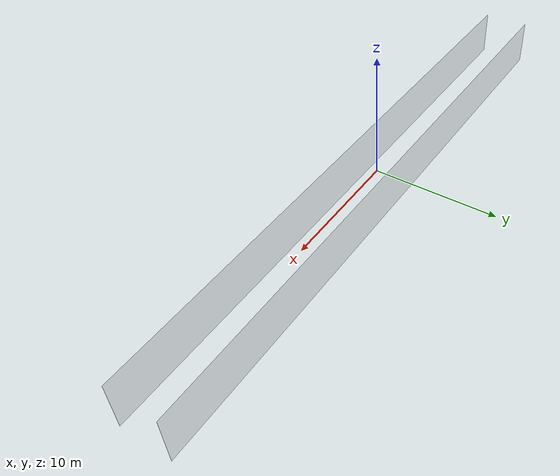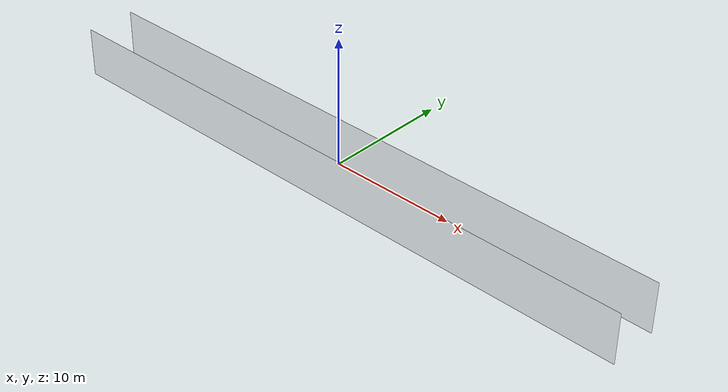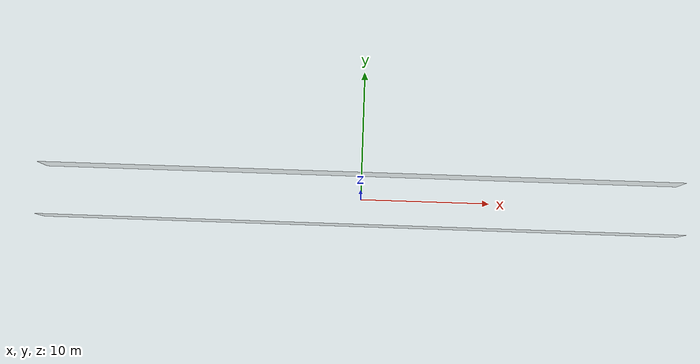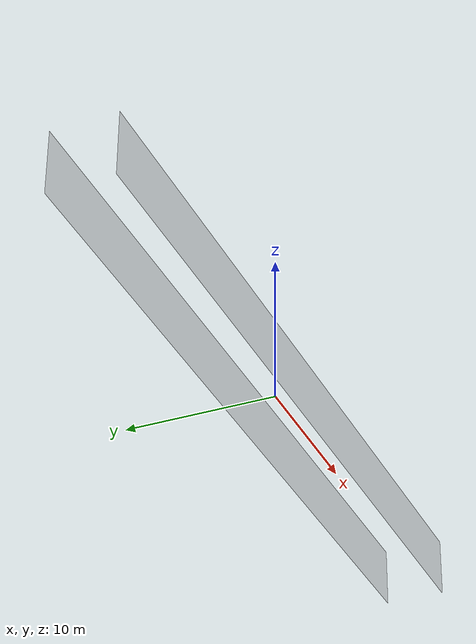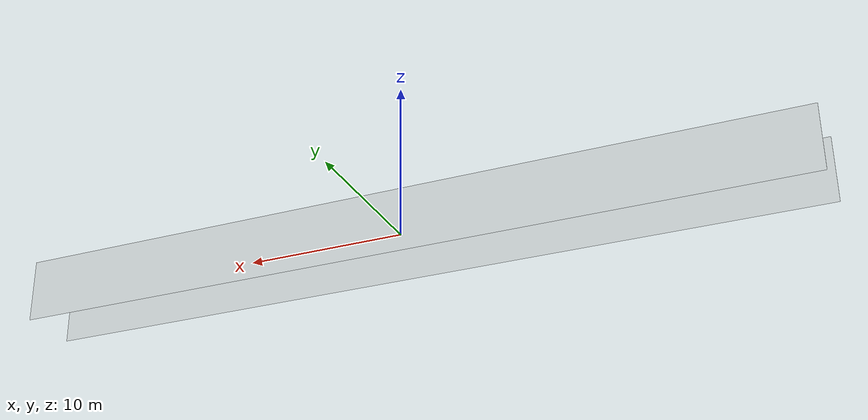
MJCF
<mujoco>
  <visual>
    <headlight ambient=".4 .4 .4" diffuse=".8 .8 .8" specular=".1 .1 .1" />
    <global offwidth="2048" offheight="1536" />
    <quality shadowsize="8192" />
    <map znear="0.00025" zfar="4.0" fogstart="0.05" fogend="1.5" />
    <rgba fog="0.0 0.0 0.0 1.0" />
  </visual>

  <asset>
    <texture name="grid" type="2d" builtin="checker" width="512" height="512"
      rgb1=".1 .2 .3" rgb2=".2 .3 .4" />
    <material name="grid" texture="grid" texrepeat="1 1" texuniform="true"
      reflectance=".2" />
    <texture name="platform_tex" type="2d" builtin="flat" width="64" height="64"
      rgb1=".5 .5 .5" rgb2=".45 .45 .45" />
    <material name="platform_mat" texture="platform_tex" texrepeat="2 2"
      texuniform="true" reflectance=".1" />
  </asset>

  <worldbody>
    <!-- Void below - no global floor, platforms are individual boxes -->
    <!-- Side walls for visual reference (no collision) -->
    <geom name="wall_left" type="plane" pos="0 2 0" zaxis="0 -1 0"
      size="25 2 0.01" contype="0" conaffinity="0" rgba="0.6 0.6 0.6 0.3" />
    <geom name="wall_right" type="plane" pos="0 -2 0" zaxis="0 1 0"
      size="25 2 0.01" contype="0" conaffinity="0" rgba="0.6 0.6 0.6 0.3" />
  </worldbody>
</mujoco>
